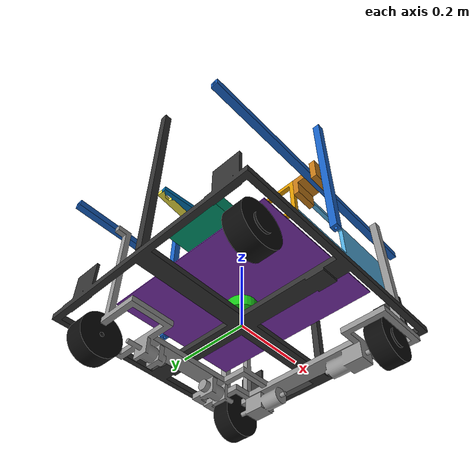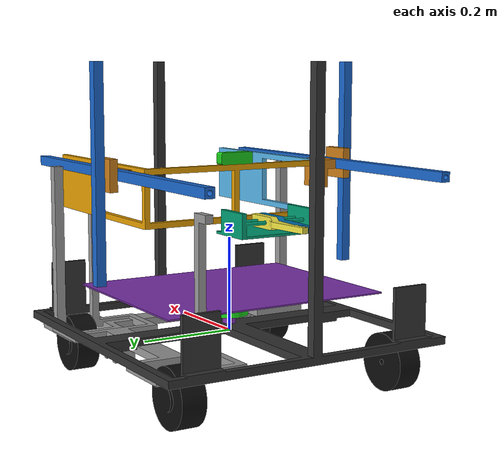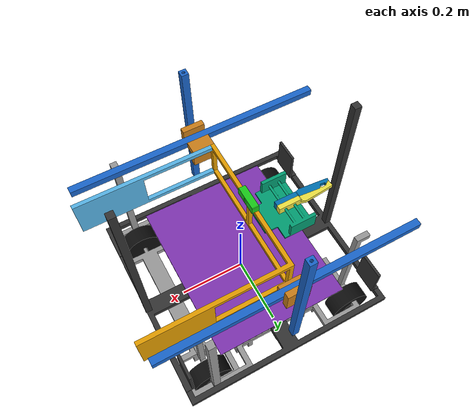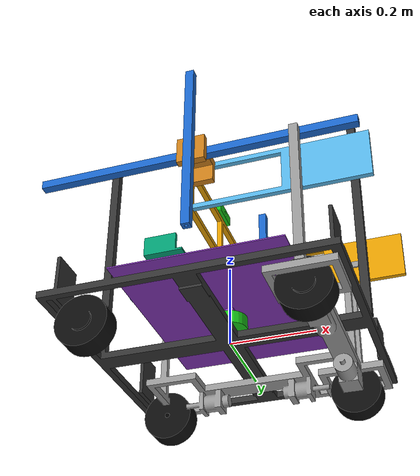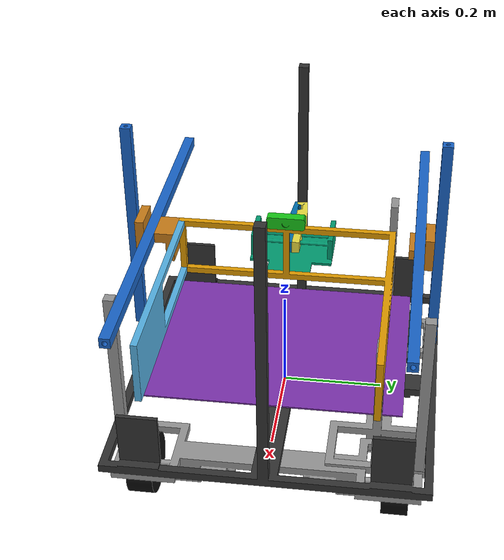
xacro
<?xml version="1.0"?>
<robot name="r2" xmlns:xacro="http://www.ros.org/wiki/xacro">

  <!-- Include materials -->
  <xacro:include filename="$(find r2_description)/urdf/materials.xacro"/>

  <!-- Include gazebo -->
  <xacro:include filename="$(find r2_description)/urdf/gazebo.xacro"/>

<!--Odometry-->
<link name="base_footprint"/>

<!-- Base Link-->
    <link name="base_link">
        <inertial>
            <origin xyz="0.0042186271235444715 2.679193213808116e-16 0.16" rpy="0.0 0.0 0.0" />
            <mass value="2.00" />
            <inertia ixx="0.42155335598643257" iyy="0.2892124481695275" izz="0.5315505031508672" ixy="-1.1992727721844926e-16" iyz="1.5347918280439902e-16" ixz="0.0001585619900969315" />
        </inertial>
        <visual name="base_link_visual">
            <origin xyz="0.0 0.0 0.0" rpy="0.0 0.0 0.0" />
            <geometry>
                <mesh filename="file://$(find r2_description)/meshes/base_link.stl" scale="0.001 0.001 0.001" />
            </geometry>
            <material name="base_color"/>
        </visual>
        <collision name="base_link_collision">
            <origin xyz="0.0 0.0 0.0" rpy="0.0 0.0 0.0" />
            <geometry>
                <mesh filename="file://$(find r2_description)/meshes/base_link.stl" scale="0.001 0.001 0.001" />
            </geometry>
        </collision>
    </link>

<!--Front Link-->
    <link name="front_link">
        <inertial>
            <origin xyz="1.1688428003253648e-14 -6.014164802022783e-17 -0.02416130998511414" rpy="0.0 -0.0 0.0" />
            <mass value="2.4" />
            <inertia ixx="0.16196111692017123" iyy="0.033252044124773755" izz="0.13349589075190105" ixy="1.6108970157799827e-17" iyz="5.0711098953601913e-17" ixz="-2.392183673372017e-15" />
        </inertial>
        <visual name="front_link_visual">
            <origin xyz="-0.23800000000000002 0.0 -0.006025000000000001" rpy="3.141592653589793 -0.0 0.0" />
            <geometry>
                <mesh filename="file://$(find r2_description)/meshes/front_link.stl" scale="0.001 0.001 0.001" />
            </geometry>
            <material name="chassis_color"/>
        </visual>
        <collision name="front_link_collision">
            <origin xyz="-0.23800000000000002 0.0 -0.006025000000000001" rpy="3.141592653589793 -0.0 0.0" />
            <geometry>
                <mesh filename="file://$(find r2_description)/meshes/front_link.stl" scale="0.001 0.001 0.001" />
            </geometry>
        </collision>
    </link>

<!--Back Link-->
    <link name="back_link">
        <inertial>
            <origin xyz="1.1688428003253648e-14 0.0 -0.024076465883564487" rpy="0.0 -0.0 0.0" />
            <mass value="2.4" />
            <inertia ixx="0.16435526563281905" iyy="0.03326294165161783" izz="0.1358827419377047" ixy="6.28642737865448e-17" iyz="0.0" ixz="-2.3869795029440866e-15" />
        </inertial>
        <visual name="back_link_visual">
            <origin xyz="0.23800000000000002 0.0 -0.006025000000000001" rpy="3.141592653589793 -0.0 0.0" />
            <geometry>
                <mesh filename="file://$(find r2_description)/meshes/back_link.stl" scale="0.001 0.001 0.001" />
            </geometry>
            <material name="chassis_color"/>
        </visual>
        <collision name="back_link_collision">
            <origin xyz="0.23800000000000002 0.0 -0.006025000000000001" rpy="3.141592653589793 -0.0 0.0" />
            <geometry>
                <mesh filename="file://$(find r2_description)/meshes/back_link.stl" scale="0.001 0.001 0.001" />
            </geometry>
        </collision>
    </link>

<!-- Vertical Expandable-->
    <link name="v_expandable_r">
        <inertial>
            <origin xyz="-1.2027605119163338e-13 -0.21999999999999964 0.010000000000000035" rpy="0.0 -0.0 0.0" />
            <mass value="0.200" />
            <inertia ixx="0.019534151646000752" iyy="9.07177309450169e-05" izz="0.019534151646180192" ixy="4.455505423730421e-18" iyz="-1.3877787807814457e-17" ixz="6.021653004568989e-18" />
        </inertial>
        <visual name="v_expandable_r_visual">
            <origin xyz="-7.105427357601002e-17 -0.45599999999999946 0.3069999999999998" rpy="1.5707963267948966 -6.938893903907214e-18 3.141592653589793" />
            <geometry>
                <mesh filename="file://$(find r2_description)/meshes/v_expandable_r.stl" scale="0.001 0.001 0.001" />
            </geometry>
            <material name="expandable_color"/>
        </visual>
        <collision name="v_expandable_r_collision">
            <origin xyz="-7.105427357601002e-17 -0.45599999999999946 0.3069999999999998" rpy="1.5707963267948966 -6.938893903907214e-18 3.141592653589793" />
            <geometry>
                <box size="0.04 0.168 0.08"/>
            </geometry>
        </collision>
    </link>
    <link name="v_expandable_l">
        <inertial>
            <origin xyz="1.2020091795622878e-13 -0.22000000000000008 0.009999999999999858" rpy="0.0 -0.0 0.0" />
            <mass value="0.200" />
            <inertia ixx="0.019534151646000697" iyy="9.071773094505853e-05" izz="0.019534151646180414" ixy="1.2634758252215852e-18" iyz="1.1102230246251565e-16" ixz="-6.416558446259208e-18" />
        </inertial>
        <visual name="v_expandable_l_visual">
            <origin xyz="-7.105427357601002e-17 -0.45600000000000007 0.3069999999999999" rpy="-1.5707963267948957 1.3877787807814443e-17 -1.2246467991473532e-16" />
            <geometry>
                <mesh filename="file://$(find r2_description)/meshes/v_expandable_l.stl" scale="0.001 0.001 0.001" />
            </geometry>
            <material name="expandable_color"/>
        </visual>
        <collision name="v_expandable_l_collision">
            <origin xyz="-7.105427357601002e-17 -0.45600000000000007 0.3069999999999999" rpy="-1.5707963267948957 1.3877787807814443e-17 -1.2246467991473532e-16" />
            <geometry>
                <box size="0.04 0.168 0.08"/>
            </geometry>
        </collision>
    </link>

<!--Horizontal Expandable-->
    <link name="h_expandable_r">
        <inertial>
            <origin xyz="2.5217287189604704e-16 -2.1316282072803005e-16 0.009999999999999966" rpy="0.0 -0.0 0.0" />
            <mass value="0.56" />
            <inertia ixx="0.00015121996039119123" iyy="0.08879108644737124" izz="0.08879108644737124" ixy="1.549594959280925e-17" iyz="2.7755575615628914e-17" ixz="7.182370609370982e-18" />
        </inertial>
        <visual name="h_expandable_r_visual">
            <origin xyz="6.042827863252935e-17 0.2824999999999999 0.26990000000000003" rpy="1.5707963267948966 -0.0 -1.2246467991473532e-16" />
            <geometry>
                <mesh filename="file://$(find r2_description)/meshes/h_expandable_r.stl" scale="0.001 0.001 0.001" />
            </geometry>
            <material name="expandable_color"/>
        </visual>
        <collision name="h_expandable_r_collision">
            <origin xyz="6.042827863252935e-17 0.2824999999999999 0.26990000000000003" rpy="1.5707963267948966 -0.0 -1.2246467991473532e-16" />
            <geometry>
                <box size="0.32 0.04 0.04"/>
            </geometry>
        </collision>
    </link>
    <link name="h_expandable_l">
        <inertial>
            <origin xyz="-1.7783613980752874e-16 2.1316282072803005e-16 0.009999999999999929" rpy="0.0 -0.0 0.0" />
            <mass value="0.56" />
            <inertia ixx="0.0001512199603910247" iyy="0.08879108644737121" izz="0.08879108644737113" ixy="3.5843619808224064e-17" iyz="-8.326672684688674e-17" ixz="5.683068593498344e-18" />
        </inertial>
        <visual name="h_expandable_l_visual">
            <origin xyz="-6.153850165715452e-17 -0.28250000000000003 0.26990000000000003" rpy="-1.5707963267948966 -0.0 -1.2246467991473532e-16" />
            <geometry>
                <mesh filename="file://$(find r2_description)/meshes/h_expandable_l.stl" scale="0.001 0.001 0.001" />
            </geometry>
            <material name="expandable_color"/>
        </visual>
        <collision name="h_expandable_l_collision">
            <origin xyz="-6.153850165715452e-17 -0.28250000000000003 0.26990000000000003" rpy="-1.5707963267948966 -0.0 -1.2246467991473532e-16" />
            <geometry>
                <box size="0.32 0.04 0.04"/>
            </geometry>
        </collision>
    </link>

<!--Gantry-->
    <link name="v_gantry_r">
        <inertial>
            <origin xyz="2.5832006556616624e-17 -7.105427357601002e-17 0.008550000000000075" rpy="0.0 -0.0 0.0" />
            <mass value="0.187" />
            <inertia ixx="0.00021350140791281946" iyy="0.00021350140791281252" izz="0.0003993631078125087" ixy="2.6773250283440193e-19" iyz="4.922530355325821e-36" ixz="2.231104190286638e-20" />
        </inertial>
        <visual name="v_gantry_r_visual">
            <origin xyz="6.042827863252935e-17 0.2824999999999999 0.28700000000000003" rpy="1.5707963267948966 -4.479329460506078e-34 -1.2246467991473532e-16" />
            <geometry>
                <mesh filename="file://$(find r2_description)/meshes/v_gantry_r.stl" scale="0.001 0.001 0.001" />
            </geometry>
            <material name="gantry_color"/>
        </visual>
        <collision name="v_gantry_r_collision">
            <origin xyz="6.042827863252935e-17 0.2824999999999999 0.28700000000000003" rpy="1.5707963267948966 -4.479329460506078e-34 -1.2246467991473532e-16" />
            <geometry>
                <box size="0.04 0.168 0.12"/>
            </geometry>
        </collision>
    </link>
    <link name="v_gantry_l">
        <inertial>
            <origin xyz="-2.6942229581241788e-17 0.0 0.008550000000000075" rpy="0.0 -0.0 0.0" />
            <mass value="0.187" />
            <inertia ixx="0.00021350140791281946" iyy="0.00021350140791281252" izz="0.00039936310781249484" ixy="-2.6773250283440656e-19" iyz="1.1163468592440427e-67" ixz="-2.2311041902865608e-20" />
        </inertial>
        <visual name="v_gantry_l_visual">
            <origin xyz="-6.153850165715452e-17 -0.28250000000000003 0.28700000000000003" rpy="-1.5707963267948966 1.1947622849140125e-34 -1.2246467991473532e-16" />
            <geometry>
                <mesh filename="file://$(find r2_description)/meshes/v_gantry_l.stl" scale="0.001 0.001 0.001" />
            </geometry>
            <material name="gantry_color"/>
        </visual>
        <collision name="v_gantry_l_collision">
            <origin xyz="-6.153850165715452e-17 -0.28250000000000003 0.28700000000000003" rpy="-1.5707963267948966 1.1947622849140125e-34 -1.2246467991473532e-16" />
            <geometry>
                <box size="0.04 0.168 0.12"/>
            </geometry>
        </collision>
    </link>

    <link name="h_gantry_r">
        <inertial>
            <origin xyz="0.0 0.013832853025936558 0.02363371757925073" rpy="0.0 -0.0 0.0" />
            <mass value="0.187" />
            <inertia ixx="0.00028625336112315936" iyy="0.000320958411897658" izz="0.0004640047950588283" ixy="1.2494183465605601e-18" iyz="-5.6491115619582144e-05" ixz="8.031975085032172e-19" />
        </inertial>
        <visual name="h_gantry_r_visual">
            <origin xyz="0.0 0.34600000000000003 0.24989999999999998" rpy="1.5707963267948966 -0.0 0.0" />
            <geometry>
                <mesh filename="file://$(find r2_description)/meshes/h_gantry_r.stl" scale="0.001 0.001 0.001" />
            </geometry>
            <material name="gantry_color"/>
        </visual>
        <collision name="h_gantry_r_collision">
            <origin xyz="0.0 0.34600000000000003 0.24989999999999998" rpy="1.5707963267948966 -0.0 0.0" />
            <geometry>
                <box size="0.45 0.04 0.04"/>
            </geometry>
        </collision>
    </link>

    <link name="h_gantry_l">
        <inertial>
            <origin xyz="0.0 -0.013832853025936629 0.023633717579250695" rpy="0.0 -0.0 0.0" />
            <mass value="0.187" />
            <inertia ixx="0.00028625336112317323" iyy="0.0003209584118976441" izz="0.0004640047950588283" ixy="-1.7848833522293717e-19" iyz="5.6491115619575205e-05" ixz="-8.924416761146858e-20" />
        </inertial>
        <visual name="h_gantry_l_visual">
            <origin xyz="0.0 -0.34600000000000003 0.24989999999999998" rpy="-1.5707963267948966 -0.0 0.0" />
            <geometry>
                <mesh filename="file://$(find r2_description)/meshes/h_gantry_l.stl" scale="0.001 0.001 0.001" />
            </geometry>
            <material name="gantry_color"/>
        </visual>
        <collision name="h_gantry_l_collision">
            <origin xyz="0.0 -0.34600000000000003 0.24989999999999998" rpy="-1.5707963267948966 -0.0 0.0" />
            <geometry>
                <box size="0.45 0.04 0.04"/>
            </geometry>
        </collision>
    </link>

<!--Wheels-->
    <link name="f_wheel_r">
        <inertial>
            <origin xyz="1.3713474800169933e-14 -2.6645352591003756e-17 -0.025026743072870658" rpy="0.0 -0.0 0.0" />
            <mass value="0.76" />
            <inertia ixx="0.0006063195606969968" iyy="0.0006063195607106525" izz="0.0009683138409003339" ixy="-8.673617379884035e-19" iyz="1.734723475976807e-18" ixz="-1.3877787807814457e-17" />
        </inertial>
        <visual name="f_wheel_r_visual">
            <origin xyz="-0.23800000000000002 0.044524999999999995 -0.2715" rpy="-1.5707963267948966 0.0 0.0" />
            <geometry>
                <mesh filename="file://$(find r2_description)/meshes/f_wheel_r.stl" scale="0.001 0.001 0.001" />
            </geometry>
            <material name="wheel_color"/>
        </visual>
        <collision name="f_wheel_r_collision">
            <origin xyz="0 0 -0.025" rpy="0.0 0.0 0.0" />
            <geometry>
                <cylinder length="0.05" radius="0.06"/>
            </geometry>

            <surface>
                <friction>
                <ode>
                    <mu>1.2</mu>
                    <mu2>1.2</mu2>
                </ode>
                </friction>
            </surface>
        </collision>
    </link>

    <link name="f_wheel_l">
        <inertial>
            <origin xyz="7.105427357601002e-17 8.881784197001253e-18 -0.025026743072870658" rpy="0.0 -0.0 0.0" />
            <mass value="0.76" />
            <inertia ixx="0.0006063195607004176" iyy="0.000606319560700383" izz="0.0009683138408934852" ixy="8.673617379884035e-19" iyz="0.0" ixz="6.938893903907228e-18" />
        </inertial>
        <visual name="f_wheel_l_visual">
            <origin xyz="-0.23800000000000002 -0.044524999999999995 -0.2715" rpy="1.5707963267948966 -0.0 0.0" />
            <geometry>
                <mesh filename="file://$(find r2_description)/meshes/f_wheel_l.stl" scale="0.001 0.001 0.001" />
            </geometry>
            <material name="wheel_color"/>
        </visual>
        <collision name="f_wheel_l_collision">
            <origin xyz="0.0 0.0 -0.025" rpy="0.0 -0.0 0.0" />
            <geometry>
                <cylinder length="0.05" radius="0.06"/>
            </geometry>

            <surface>
                <friction>
                <ode>
                    <mu>1.2</mu>
                    <mu2>1.2</mu2>
                </ode>
                </friction>
            </surface>
        </collision>
    </link>

    <link name="b_wheel_r">
        <inertial>
            <origin xyz="-6.8212102632969615e-15 -8.881784197001253e-18 -0.025026743072870658" rpy="0.0 -0.0 0.0" />
            <mass value="0.76" />
            <inertia ixx="0.0006063195607106525" iyy="0.0006063195606969829" izz="0.000968313840900327" ixy="3.469446951953614e-18" iyz="-8.673617379884035e-19" ixz="0.0" />
        </inertial>
        <visual name="b_wheel_r_visual">
            <origin xyz="0.23800000000000002 0.044524999999999995 -0.2735" rpy="-1.5707963267948966 -0.0 0.0" />
            <geometry>
                <mesh filename="file://$(find r2_description)/meshes/b_wheel_r.stl" scale="0.001 0.001 0.001" />
            </geometry>
            <material name="wheel_color"/>
        </visual>
        <collision name="b_wheel_r_collision">
            <origin xyz="0 0 -0.025" rpy="0.0 0.0 -1.5707963267948966" />
            <geometry>
                <cylinder length="0.05" radius="0.06"/>
            </geometry>

            <surface>
                <friction>
                <ode>
                    <mu>1.2</mu>
                    <mu2>1.2</mu2>
                </ode>
                </friction>
            </surface>
        </collision>
    </link>

    <link name="b_wheel_l">
        <inertial>
            <origin xyz="-3.552713678800501e-17 1.7763568394002505e-17 -0.025026743072870696" rpy="0.0 -0.0 0.0" />
            <mass value="0.76" />
            <inertia ixx="0.0006063195607004385" iyy="0.0006063195607003968" izz="0.0009683138408934852" ixy="1.734723475976807e-18" iyz="-2.6020852139652106e-18" ixz="0.0" />
        </inertial>
        <visual name="b_wheel_l_visual">
            <origin xyz="0.23800000000000002 -0.044524999999999995 -0.2735" rpy="1.5707963267948966 -0.0 0.0" />
            <geometry>
                <mesh filename="file://$(find r2_description)/meshes/b_wheel_l.stl" scale="0.001 0.001 0.001" />
            </geometry>
            <material name="wheel_color"/>
        </visual>
        <collision name="b_wheel_l_collision">
            <origin xyz="0 0 -0.025" rpy="0.0 0.0 -1.5707963267948966" />
            <geometry>
                <cylinder length="0.05" radius="0.06"/>
            </geometry>

            <surface>
                <friction>
                <ode>
                    <mu>1.2</mu>
                    <mu2>1.2</mu2>
                </ode>
                </friction>
            </surface>
        </collision>
    </link>

<!--KFS Gripper-->
    <link name="kfs_gripper_link">
        <inertial>
            <origin xyz="0.1955779403489025 0.059999999999999894 0.3528781654473832" rpy="0.0 -0.0 0.0" />
            <mass value="4.017441599999999" />
            <inertia ixx="0.06819760915846967" iyy="0.15450102238452545" izz="0.10060982797165563" ixy="-2.7755575615628914e-17" iyz="-2.7755575615628914e-17" ixz="-0.050359599489332496" />
        </inertial>
        <visual name="kfs_gripper_link_visual">
            <origin xyz="0.0 0.3559999999999999 0.21249999999999997" rpy="1.5707963267948966 -0.0 0.0" />
            <geometry>
                <mesh filename="file://$(find r2_description)/meshes/kfs_gripper_link.stl" scale="0.001 0.001 0.001" />
            </geometry>
        </visual>
        <collision name="kfs_gripper_link_collision">
            <origin xyz="0.0 0.3559999999999999 0.21249999999999997" rpy="1.5707963267948966 -0.0 0.0" />
            <geometry>
                <box size="0.08 0.08 0.06"/>
            </geometry>
        </collision>
    </link>

    <!--kfs finger-->
    <link name="kfs_finger">
        <inertial>
            <origin xyz="-0.0059999999999999784 0.059999999999999894 0.2728741721854304" rpy="0.0 -0.0 0.0" />
            <mass value="2.7310464000000003" />
            <inertia ixx="0.029521380670728292" iyy="0.02546431176832853" izz="0.0041226140159998925" ixy="0.0" iyz="-5.551115123125783e-17" ixz="-2.7755575615628914e-17" />
        </inertial>
        <visual name="kfs_finger_visual">
            <origin xyz="-0.2124999999999999 0.3559999999999999 -0.012000000000000002" rpy="1.5707963267948966 -1.5707963267948966 0" />
            <geometry>
                <mesh filename="file://$(find r2_description)/meshes/kfs_finger.stl" scale="0.001 0.001 0.001" />
            </geometry>
        </visual>
        <collision name="kfs_finger_collision">
            <origin xyz="-0.2124999999999999 0.3559999999999999 -0.012000000000000002" rpy="1.5707963267948966 -1.5707963267948966 0" />
            <geometry>
                <box size="0.02 0.04 0.05"/>
            </geometry>
        </collision>
    </link>

<!--Spearhead Gripper-->
    <link name="spearhead_body">
        <inertial>
            <origin xyz="-0.10650436783393792 -4.818367926873193e-16 0.24498998848839812" rpy="0.0 0.0 0.0" />
            <mass value="0.95" />
            <inertia ixx="0.005634036903364744" iyy="0.0018508087267255472" izz="0.006850373035303052" ixy="7.817097663620531e-17" iyz="1.3346564094906206e-17" ixz="0.00018420936308609" />
        </inertial>
        <visual name="spearhead_body_visual">
            <origin xyz="0.0 0.0 0.0" rpy="0.0 0.0 0.0" />
            <geometry>
                <mesh filename="file://$(find r2_description)/meshes/spearhead_body.stl" scale="0.001 0.001 0.001" />
            </geometry>
        </visual>
        <collision name="spearhead_body_collision">
            <origin xyz="0.0 0.0 0.0" rpy="0.0 0.0 0.0" />
            <geometry>
                <box size="0.06 0.06 0.08"/>
            </geometry>
        </collision>
    </link>
    <!--right finger-->
    <link name="spearhead_finger_r">
        <inertial>
            <origin xyz="-0.05790307713907636 4.676666307545929e-09 0.007694370676839134" rpy="0.0 -0.0 0.0" />
            <mass value="0.058" />
            <inertia ixx="2.506499874757595e-05" iyy="0.0009802969467722182" izz="0.0009816202967382268" ixy="2.7755575615628914e-17" iyz="-6.559423143537302e-18" ixz="-5.176100770984052e-06" />
        </inertial>
        <visual name="spearhead_finger_r_visual">
            <origin xyz="0.10250000190230253 0.2560000046766657 -0.008748863488359066" rpy="1.5707963267948963 -0.0 0.0" />
            <geometry>
                <mesh filename="file://$(find r2_description)/meshes/spearhead_finger_r.stl" scale="0.001 0.001 0.001" />
            </geometry>
        </visual>
        <collision name="spearhead_finger_r_collision">
            <origin xyz="0.10250000190230253 0.2560000046766657 -0.008748863488359066" rpy="1.5707963267948963 -0.0 0.0" />
            <geometry>
                <box size="0.01 0.04 0.06"/>
            </geometry>
        </collision>
    </link>
    <!--left finger-->
    <link name="spearhead_finger_l">
        <inertial>
            <origin xyz="-0.02790307713902619 4.676666343073066e-09 -0.007694364948372371" rpy="0.0 -0.0 0.0" />
            <mass value="0.058" />
            <inertia ixx="2.5064998747569012e-05" iyy="0.0009802969467739252" izz="0.0009816202967399268" ixy="2.42861286636753e-17" iyz="-7.589415207398531e-18" ixz="5.176100770980284e-06" />
        </inertial>
        <visual name="spearhead_finger_l_visual">
            <origin xyz="0.13250000190230252 0.2560000046766657 0.008748869216825784" rpy="1.5707963267948963 -0.0 0.0" />
            <geometry>
                <mesh filename="file://$(find r2_description)/meshes/spearhead_finger_l.stl" scale="0.001 0.001 0.001" />
            </geometry>
        </visual>
        <collision name="spearhead_finger_l_collision">
            <origin xyz="0.13250000190230252 0.2560000046766657 0.008748869216825784" rpy="1.5707963267948963 -0.0 0.0" />
            <geometry>
                <box size="0.01 0.04 0.06"/>
            </geometry>
        </collision>
    </link>

<!--CAMERA-->
    <link name="camera_link">
        <inertial>
            <origin xyz="0.009894465299491869 -0.012500000000000072 9.415354068752146e-15" rpy="0.0 -0.0 0.0" />
            <mass value="0.3" />
            <inertia ixx="0.00014832028606556052" iyy="0.0001429062226769995" izz="2.427338819091518e-05" ixy="8.673617379884035e-19" iyz="4.462208380571582e-20" ixz="-2.412613722866814e-17" />
        </inertial>
        <visual name="camera_link_visual">
            <origin xyz="0.052499999999999984 0.36749999999999994 -3.552713678800515e-17" rpy="1.5707963267948966 -4.6816763546921983e-97 -1.1869459682199748e-66" />
            <geometry>
                <mesh filename="file://$(find r2_description)/meshes/camera_link.stl" scale="0.001 0.001 0.001" />
            </geometry>
            <material name="camera_color"/>
        </visual>
        <collision name="camera_link_collision">
            <origin xyz="0.052499999999999984 0.36749999999999994 -3.552713678800515e-17" rpy="1.5707963267948966 -4.6816763546921983e-97 -1.1869459682199748e-66" />
            <geometry>
                <box size="0.03 0.03 0.03"/>
            </geometry>
        </collision>
    </link>

<!--LIDAR-->
    <link name="lidar_link">

        <inertial>
            <origin xyz="0 0 0" rpy="0 0 0"/>
            <mass value="0.2"/>

            <inertia
                ixx="0.0001"
                ixy="0.0"
                ixz="0.0"
                iyy="0.0001"
                iyz="0.0"
                izz="0.0001"/>
        </inertial>

        <visual name="lidar_visual">
            <origin xyz="0 0 0" rpy="0 0 0"/>
            <geometry>
                <cylinder radius="0.04" length="0.03"/>
            </geometry>
            <material name="camera_color"/>
        </visual>

        <collision name="lidar_collision">
            <origin xyz="0 0 0" rpy="0 0 0"/>
            <geometry>
                <cylinder radius="0.04" length="0.03"/>
            </geometry>
        </collision>
    </link>

<!--Storage Plate-->
    <link name="storage_plate">
        <inertial>
            <origin xyz="6.939666025053356e-16 1.4457637552194492e-16 0.0884398437074973" rpy="0.0 0.0 0.0" />
            <mass value="0.598" />
            <inertia ixx="0.014939187362813498" iyy="0.009584187362813381" izz="0.024397306664266268" ixy="1.8702121451497085e-16" iyz="3.554700142666859e-17" ixz="6.845661002964557e-17" />
        </inertial>
        <visual name="storage_plate_visual">
            <origin xyz="0.0 0.0 0.0" rpy="0.0 0.0 0.0" />
            <geometry>
                <mesh filename="file://$(find r2_description)/meshes/storage_plate.stl" scale="0.001 0.001 0.001" />
            </geometry>
            <material name="storage_plate_color"/>
        </visual>
        <collision name="storage_plate_collision">
            <origin xyz="0.0 0.0 0.0" rpy="0.0 0.0 0.0" />
            <geometry>
                <mesh filename="file://$(find r2_description)/meshes/storage_plate.stl" scale="0.001 0.001 0.001" />
            </geometry>
        </collision>
    </link>

<!--JOINTS-->

    <!--base_footprint to Base-->
    <joint name="odom_base_link" type="fixed">
        <origin xyz="0 0 0" rpy="0 0 0"/>
        <parent link="base_footprint"/>
        <child link="base_link"/>
    </joint>

    <!--Base link -Front-Back-Links-->
    <joint name="base_link_front_link" type="prismatic">
        <origin xyz="0.23800000000000002 0.0 -0.006025000000000001" rpy="3.141592653589793 -0.0 0.0" />
        <parent link="base_link" />
        <child link="front_link" />
        <axis xyz="0.0 0.0 1.0" />
        <limit lower="0.0" upper="0.2" effort="100" velocity="1.0"/>
        <dynamics damping="10.0" friction="2.0"/>
    </joint>
    <joint name="base_link_back_link" type="prismatic">
        <origin xyz="-0.23800000000000002 0.0 -0.006025000000000001" rpy="3.141592653589793 -0.0 0.0" />
        <parent link="base_link" />
        <child link="back_link" />
        <axis xyz="0.0 0.0 1.0" />
        <limit lower="0.0" upper="0.2" effort="100" velocity="1.0"/>
        <dynamics damping="10.0" friction="2.0"/>
    </joint>

    <!--Wheel Joints-->
    <joint name="f_wheel_r_revolute" type="continuous">
        <origin xyz="0.0 0.2715 0.0385" rpy="-1.5707963267948966 -0.0 0.0" />
        <parent link="front_link" />
        <child link="f_wheel_r" />
        <axis xyz="0.0 0.0 -1.0" />
    </joint>
    <joint name="f_wheel_l_revolute" type="continuous">
        <origin xyz="0.0 -0.2715 0.0385" rpy="1.5707963267948966 -0.0 0.0" />
        <parent link="front_link" />
        <child link="f_wheel_l" />
        <axis xyz="0.0 0.0 1.0" />
    </joint>
    <joint name="b_wheel_r_revolute" type="continuous">
        <origin xyz="0.0 0.2735 0.0385" rpy="-1.5707963267948966 -0.0 0.0" />
        <parent link="back_link" />
        <child link="b_wheel_r" />
        <axis xyz="0.0 0.0 -1.0" />
    </joint>
    <joint name="b_wheel_l_revolute" type="continuous">
        <origin xyz="0.0 -0.2735 0.0385" rpy="1.5707963267948966 -0.0 0.0" />
        <parent link="back_link" />
        <child link="b_wheel_l" />
        <axis xyz="0.0 0.0 1.0" />
    </joint>

    <!--base_link-to-V_expandable-->
    <joint name="base_link_v_expandable_r" type="prismatic">
        <origin xyz="0.0 -0.307 0.5660000000000001" rpy="1.5707963267948966 -0.0 3.141592653589793" />
        <parent link="base_link" />
        <child link="v_expandable_r" />
        <axis xyz="0.0 1.0 0.0" />
        <limit lower="0.0" upper="0.2" effort="100" velocity="1.0"/>
        <dynamics damping="5.0" friction="1.0"/>
    </joint>
    <joint name="base_link_v_expandable_l" type="prismatic">
        <origin xyz="0.0 0.307 0.5660000000000001" rpy="1.5707963267948966 -0.0 0.0" />
        <parent link="base_link" />
        <child link="v_expandable_l" />
        <axis xyz="0.0 1.0 0.0" />
        <limit lower="0.0" upper="0.2" effort="100" velocity="1.0"/>
        <dynamics damping="5.0" friction="1.0"/>
    </joint>

    <!--V_expandable-to-gantry-->
    <joint name="v_expandable_r_v_gantry_r" type="prismatic">
        <origin xyz="0.0 -0.22 0.02" rpy="1.232595164407831e-32 4.479329460506062e-34 3.141592653589793" />
        <parent link="v_expandable_r" />
        <child link="v_gantry_r" />
        <axis xyz="0.0 1.0 2.1895288505075267e-47" />
        <limit lower="0.0" upper="0.2" effort="100" velocity="1.0"/>
        <dynamics damping="5.0" friction="1.0"/>
    </joint>
    <joint name="v_expandable_l_v_gantry_l" type="prismatic">
        <origin xyz="0.0 -0.22 0.02" rpy="0.0 -1.1947622849140125e-34 0.0" />
        <parent link="v_expandable_l" />
        <child link="v_gantry_l" />
        <axis xyz="0.0 1.0 0.0" />
        <limit lower="0.0" upper="0.2" effort="100" velocity="1.0"/>
        <dynamics damping="5.0" friction="1.0"/>
    </joint>

    <!--V_gantry-to-H_Expandable-->
    <joint name="v_gantry_r_to_h_expandable_r" type="fixed">
        <origin xyz="-1.0538688655686983e-34 0.0 0.017100000000000008" rpy="-1.232595164407831e-32 -4.479329460506062e-34 -9.807621084706338e-81" />
        <parent link="v_gantry_r" />
        <child link="h_expandable_r" />
    </joint>
    <joint name="v_gantry_l_to_h_expandable_l" type="fixed">
        <origin xyz="7.130076136060349e-51 0.0 0.017100000000000008" rpy="0.0 1.1947622849140125e-34 0.0" />
        <parent link="v_gantry_l" />
        <child link="h_expandable_l" />
    </joint>

    <!--Horizontal Expandable-->
    <joint name="h_expandable_r_h_gantry_r" type="prismatic">
        <origin xyz="0.0 0.0 0.02" rpy="0.0 -0.0 0.0" />
        <parent link="h_expandable_r" />
        <child link="h_gantry_r" />
        <axis xyz="0.0 1.0 0.0" />
        <limit lower="0.0" upper="0.2" effort="100" velocity="1.0"/>
        <dynamics damping="5.0" friction="1.0"/>
    </joint>
    <joint name="h_expandable_l_h_gantry_l" type="prismatic">
        <origin xyz="0.0 0.0 0.02" rpy="0.0 -0.0 0.0" />
        <parent link="h_expandable_l" />
        <child link="h_gantry_l" />
        <axis xyz="0.0 1.0 0.0" />
        <limit lower="0.0" upper="0.2" effort="100" velocity="1.0"/>
        <dynamics damping="5.0" friction="1.0"/>
    </joint>

    <!--horizontal Gantry and KFS Gripper-->
    <joint name="h_gantry_right_kfs_gripper_gantry_r" type="fixed">
        <origin xyz="-0.0325 -0.01 0.03739999999999998" rpy="0.0 -0.0 0.0" />
        <parent link="h_gantry_r" />
        <child link="kfs_gripper_link" />
    </joint>
    <!--KFS Finger Joint-->
    <joint name="kfs_gripper_link_kfs_finger_grip" type="prismatic">
        <origin xyz="0.012000000000000002 0.0 0.0" rpy="-0.0 1.5707963267948966 0" />
        <parent link="kfs_gripper_link" />
        <child link="kfs_finger" />
        <axis xyz="1.0 0.0 0.0" />
        <limit lower="0.0" upper="0.2" effort="100" velocity="1.0"/>
    </joint>

    <!--Spearhead Gripping Joint-->
    <joint name="spearhead_body_spearhead_finger_r_grip" type="prismatic">
        <origin xyz="-0.10250000190230202 -2.8642330940353845e-09 0.2560000046766657" rpy="-1.5707963267948966 -0.0 0.0" />
        <parent link="spearhead_body" />
        <child link="spearhead_finger_r" />
        <axis xyz="0.0 -2.465190328815662e-32 1.0" />
        <limit lower="0.0" upper="0.2" effort="100" velocity="1.0"/>
    </joint>

    <joint name="spearhead_body_spearhead_finger_l_grip" type="prismatic">
        <origin xyz="-0.13250000190230193 -2.8642330940353845e-09 0.2560000046766657" rpy="-1.5707963267948966 -0.0 0.0" />
        <parent link="spearhead_body" />
        <child link="spearhead_finger_l" />
        <axis xyz="0.0 -2.465190328815662e-32 1.0" />
        <limit lower="0.0" upper="0.2" effort="100" velocity="1.0"/>
    </joint>

    <!--Spearhead Revolute-->
    <joint name="kfs_gripper_link_spearhead_gripper_rotate" type="revolute">
        <origin xyz="0.0 0.36 0.2125" rpy="+1.57 0.0 0.0" />
        <parent link="kfs_gripper_link" />
        <child link="spearhead_body" />
        <axis xyz="0.0 8.359326303060042e-17 1.0" />
        <limit lower="-1.57" upper="1.57" effort="100" velocity="1.0"/>
    </joint>

    <!--CAMERA Rotation-->
    <joint name="kfs_gripper_link_camera_rotate" type="revolute">
        <origin xyz="0.0 0.0 0.2125" rpy="3.944304526105059e-31 -0.0 1.1869459682199748e-66" />
        <parent link="kfs_gripper_link" />
        <child link="camera_link" />
        <axis xyz="0.0 3.944304526105059e-31 1.0" />
        <limit lower="-1.57" upper="1.57" effort="100" velocity="1.0"/>
    </joint>

    <!--LIDAR Joint-->
    <joint name="base_to_lidar" type="fixed">
        <parent link="base_link"/>
        <child link="lidar_link"/>
        <origin xyz="0 0 0.05" rpy="0 0 0"/>
    </joint>

    <!--Storage Plate Joint-->
    <joint name="base_to_storage_plate" type="fixed">
        <parent link="base_link"/>
        <child link="storage_plate"/>
        <origin xyz="0 0 0" rpy="0 0 0"/>
    </joint>

</robot>

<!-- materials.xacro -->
<robot xmlns:xacro="http://www.ros.org/wiki/xacro">

  <!-- BASE -->
  <material name="base_color">
    <color rgba="0.20 0.20 0.20 1.0"/>
  </material>

  <!-- CHASSIS -->
  <material name="chassis_color">
    <color rgba="0.60 0.60 0.60 1.0"/>
  </material>

  <!-- EXPANDABLE STRUCTURE -->
  <material name="expandable_color">
    <color rgba="0.10 0.40 0.80 1.0"/>
  </material>

  <!-- GANTRY -->
  <material name="gantry_color">
    <color rgba="0.80 0.50 0.10 1.0"/>
  </material>

  <!-- WHEELS -->
  <material name="wheel_color">
    <color rgba="0.05 0.05 0.05 1.0"/>
  </material>

  <!-- GRIPPER -->
  <material name="gripper_color">
    <color rgba="0.80 0.10 0.10 1.0"/>
  </material>

  <!-- CAMERA -->
  <material name="camera_color">
    <color rgba="0.10 0.80 0.10 1.0"/>
  </material>

  <!-- STORAGE PLATE -->
  <material name="storage_plate_color">
    <color rgba="0.50 0.20 0.70 1.0"/>
  </material>

</robot>
